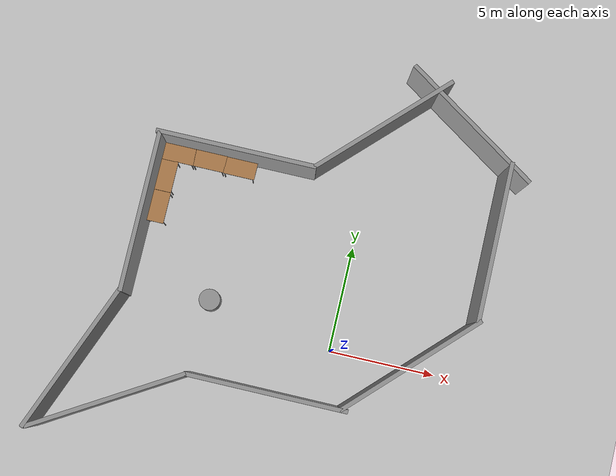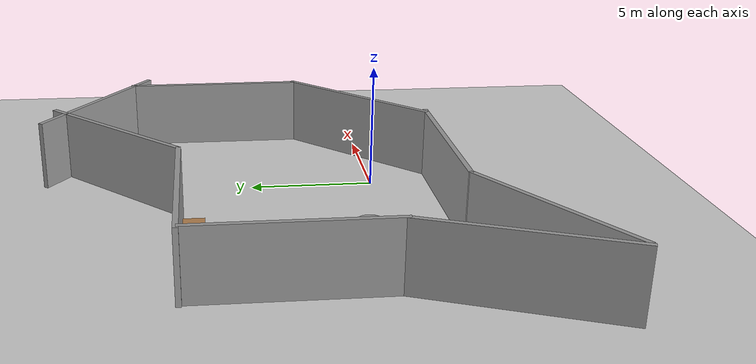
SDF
<sdf version="1.7">
 <world name="default">
  <light name="sun" type="directional">
   <pose>0 0 10 0 -0 0</pose>
   <diffuse>0.8 0.8 0.8 1</diffuse>
   <specular>0.2 0.2 0.2 1</specular>
   <attenuation>
    <range>1000</range>
    <constant>0.9</constant>
    <linear>0.01</linear>
    <quadratic>0.001</quadratic>
   </attenuation>
   <direction>-0.5 0.1 -0.9</direction>
   <spot><inner_angle>0</inner_angle><outer_angle>0</outer_angle><falloff>0</falloff></spot>
  </light>
  <model name="ground_plane">
   <static>1</static>
   <link name="link">
    <collision name="collision">
     <geometry><plane><normal>0 0 1</normal><size>100 100</size></plane></geometry>
     <surface><friction><ode><mu>100</mu><mu2>50</mu2></ode></friction></surface>
    </collision>
    <visual name="visual">
     <cast_shadows>0</cast_shadows>
     <geometry><plane><normal>0 0 1</normal><size>100 100</size></plane></geometry>
     <material>
      <script><uri>file://media/materials/scripts/gazebo.material</uri><name>Gazebo/Grey</name></script>
     </material>
    </visual>
   </link>
  </model>
  <gravity>0 0 -9.8</gravity>
  <magnetic_field>6e-06 2.3e-05 -4.2e-05</magnetic_field>
  <atmosphere type="adiabatic"/>
  <physics type="ode">
   <max_step_size>0.001</max_step_size>
   <real_time_factor>1</real_time_factor>
   <real_time_update_rate>1000</real_time_update_rate>
  </physics>
  <scene><ambient>0.4 0.4 0.4 1</ambient><background>0.7 0.7 0.7 1</background><shadows>1</shadows></scene>
  <audio><device>default</device></audio>
  <spherical_coordinates>
   <surface_model>EARTH_WGS84</surface_model>
   <latitude_deg>0</latitude_deg>
   <longitude_deg>0</longitude_deg>
   <elevation>0</elevation>
   <heading_deg>0</heading_deg>
  </spherical_coordinates>
  <model name="grey_wall_clone">
   <static>1</static>
   <link name="link">
    <pose>0 0 1.4 0 -0 0</pose>
    <collision name="collision"><geometry><box><size>7.5 0.2 2.8</size></box></geometry></collision>
    <visual name="visual">
     <cast_shadows>0</cast_shadows>
     <geometry><box><size>7.5 0.2 2.8</size></box></geometry>
     <material>
      <script>
       <uri>model://grey_wall/materials/scripts</uri>
       <uri>model://grey_wall/materials/textures</uri>
       <name>vrc/grey_wall</name>
      </script>
     </material>
    </visual>
   </link>
   <pose>-2.43797 -2.49316 0 0 -0 0</pose>
  </model>
  <model name="grey_wall_clone_0">
   <static>1</static>
   <link name="link">
    <pose>0 0 1.4 0 -0 0</pose>
    <collision name="collision"><geometry><box><size>7.5 0.2 2.8</size></box></geometry></collision>
    <visual name="visual">
     <cast_shadows>0</cast_shadows>
     <geometry><box><size>7.5 0.2 2.8</size></box></geometry>
     <material>
      <script>
       <uri>model://grey_wall/materials/scripts</uri>
       <uri>model://grey_wall/materials/textures</uri>
       <name>vrc/grey_wall</name>
      </script>
     </material>
    </visual>
   </link>
   <pose>-6.26234 7.91637 0 0 -0 0</pose>
  </model>
  <model name="grey_wall_clone_1">
   <static>1</static>
   <link name="link">
    <pose>0 0 1.4 0 -0 0</pose>
    <collision name="collision"><geometry><box><size>7.5 0.2 2.8</size></box></geometry></collision>
    <visual name="visual">
     <cast_shadows>0</cast_shadows>
     <geometry><box><size>7.5 0.2 2.8</size></box></geometry>
     <material>
      <script>
       <uri>model://grey_wall/materials/scripts</uri>
       <uri>model://grey_wall/materials/textures</uri>
       <name>vrc/grey_wall</name>
      </script>
     </material>
    </visual>
   </link>
   <pose>3.59461 0.136206 0 0 -0 0.785398</pose>
  </model>
  <model name="grey_wall_clone_2">
   <static>1</static>
   <link name="link">
    <pose>0 0 1.4 0 -0 0</pose>
    <collision name="collision"><geometry><box><size>7.5 0.2 2.8</size></box></geometry></collision>
    <visual name="visual">
     <cast_shadows>0</cast_shadows>
     <geometry><box><size>7.5 0.2 2.8</size></box></geometry>
     <material>
      <script>
       <uri>model://grey_wall/materials/scripts</uri>
       <uri>model://grey_wall/materials/textures</uri>
       <name>vrc/grey_wall</name>
      </script>
     </material>
    </visual>
   </link>
   <pose>6.1017 6.4068 0 0 0 -1.5708</pose>
  </model>
  <model name="grey_wall_clone_clone">
   <static>1</static>
   <link name="link">
    <pose>0 0 1.4 0 -0 0</pose>
    <collision name="collision"><geometry><box><size>7.5 0.2 2.8</size></box></geometry></collision>
    <visual name="visual">
     <cast_shadows>0</cast_shadows>
     <geometry><box><size>7.5 0.2 2.8</size></box></geometry>
     <material>
      <script>
       <uri>model://grey_wall/materials/scripts</uri>
       <uri>model://grey_wall/materials/textures</uri>
       <name>vrc/grey_wall</name>
      </script>
     </material>
    </visual>
   </link>
   <pose>3.94104 11.4701 0 0 0 -0.5865</pose>
  </model>
  <model name="grey_wall_clone_1_clone">
   <static>1</static>
   <link name="link">
    <pose>0 0 1.4 0 -0 0</pose>
    <collision name="collision"><geometry><box><size>7.5 0.2 2.8</size></box></geometry></collision>
    <visual name="visual">
     <cast_shadows>0</cast_shadows>
     <geometry><box><size>7.5 0.2 2.8</size></box></geometry>
     <material>
      <script>
       <uri>model://grey_wall/materials/scripts</uri>
       <uri>model://grey_wall/materials/textures</uri>
       <name>vrc/grey_wall</name>
      </script>
     </material>
    </visual>
   </link>
   <pose>0.046173 10.5537 0 0 -0 0.785398</pose>
  </model>
  <model name="grey_wall_clone_1_clone_0">
   <static>1</static>
   <link name="link">
    <pose>0 0 1.4 0 -0 0</pose>
    <collision name="collision"><geometry><box><size>7.5 0.2 2.8</size></box></geometry></collision>
    <visual name="visual">
     <cast_shadows>0</cast_shadows>
     <geometry><box><size>7.5 0.2 2.8</size></box></geometry>
     <material>
      <script>
       <uri>model://grey_wall/materials/scripts</uri>
       <uri>model://grey_wall/materials/textures</uri>
       <name>vrc/grey_wall</name>
      </script>
     </material>
    </visual>
   </link>
   <pose>-9.82935 4.15935 0 0 -0 1.5708</pose>
  </model>
  <model name="grey_wall_clone_1_clone_clone">
   <static>1</static>
   <link name="link">
    <pose>0 0 1.4 0 -0 0</pose>
    <collision name="collision"><geometry><box><size>7.5 0.2 2.8</size></box></geometry></collision>
    <visual name="visual">
     <cast_shadows>0</cast_shadows>
     <geometry><box><size>7.5 0.2 2.8</size></box></geometry>
     <material>
      <script>
       <uri>model://grey_wall/materials/scripts</uri>
       <uri>model://grey_wall/materials/textures</uri>
       <name>vrc/grey_wall</name>
      </script>
     </material>
    </visual>
   </link>
   <pose>-11.2259 -2.9295 0 0 -0 1.19166</pose>
  </model>
  <model name="grey_wall_clone_1_clone_clone_0">
   <static>1</static>
   <link name="link">
    <pose>0 0 1.4 0 -0 0</pose>
    <collision name="collision"><geometry><box><size>7.5 0.2 2.8</size></box></geometry></collision>
    <visual name="visual">
     <cast_shadows>0</cast_shadows>
     <geometry><box><size>7.5 0.2 2.8</size></box></geometry>
     <material>
      <script>
       <uri>model://grey_wall/materials/scripts</uri>
       <uri>model://grey_wall/materials/textures</uri>
       <name>vrc/grey_wall</name>
      </script>
     </material>
    </visual>
   </link>
   <pose>-9.29367 -4.41799 0 0 -0 0.542141</pose>
  </model>
  <model name="table">
   <static>1</static>
   <link name="link">
    <collision name="surface">
     <pose>0 0 1 0 -0 0</pose>
     <geometry><box><size>1.5 0.8 0.03</size></box></geometry>
     <surface><friction><ode><mu>0.6</mu><mu2>0.6</mu2></ode></friction></surface>
    </collision>
    <visual name="visual1">
     <pose>0 0 1 0 -0 0</pose>
     <geometry><box><size>1.5 0.8 0.03</size></box></geometry>
     <material>
      <script><uri>file://media/materials/scripts/gazebo.material</uri><name>Gazebo/Wood</name></script>
     </material>
    </visual>
    <collision name="front_left_leg">
     <pose>0.68 0.38 0.5 0 -0 0</pose>
     <geometry><cylinder><radius>0.02</radius><length>1</length></cylinder></geometry>
    </collision>
    <visual name="front_left_leg">
     <pose>0.68 0.38 0.5 0 -0 0</pose>
     <geometry><cylinder><radius>0.02</radius><length>1</length></cylinder></geometry>
     <material>
      <script><uri>file://media/materials/scripts/gazebo.material</uri><name>Gazebo/Grey</name></script>
     </material>
    </visual>
    <collision name="front_right_leg">
     <pose>0.68 -0.38 0.5 0 -0 0</pose>
     <geometry><cylinder><radius>0.02</radius><length>1</length></cylinder></geometry>
    </collision>
    <visual name="front_right_leg">
     <pose>0.68 -0.38 0.5 0 -0 0</pose>
     <geometry><cylinder><radius>0.02</radius><length>1</length></cylinder></geometry>
     <material>
      <script><uri>file://media/materials/scripts/gazebo.material</uri><name>Gazebo/Grey</name></script>
     </material>
    </visual>
    <collision name="back_right_leg">
     <pose>-0.68 -0.38 0.5 0 -0 0</pose>
     <geometry><cylinder><radius>0.02</radius><length>1</length></cylinder></geometry>
    </collision>
    <visual name="back_right_leg">
     <pose>-0.68 -0.38 0.5 0 -0 0</pose>
     <geometry><cylinder><radius>0.02</radius><length>1</length></cylinder></geometry>
     <material>
      <script><uri>file://media/materials/scripts/gazebo.material</uri><name>Gazebo/Grey</name></script>
     </material>
    </visual>
    <collision name="back_left_leg">
     <pose>-0.68 0.38 0.5 0 -0 0</pose>
     <geometry><cylinder><radius>0.02</radius><length>1</length></cylinder></geometry>
    </collision>
    <visual name="back_left_leg">
     <pose>-0.68 0.38 0.5 0 -0 0</pose>
     <geometry><cylinder><radius>0.02</radius><length>1</length></cylinder></geometry>
     <material>
      <script><uri>file://media/materials/scripts/gazebo.material</uri><name>Gazebo/Grey</name></script>
     </material>
    </visual>
   </link>
   <pose>-8.97399 7.39383 0 0 -0 0</pose>
  </model>
  <model name="table_clone">
   <static>1</static>
   <link name="link">
    <collision name="surface">
     <pose>0 0 1 0 -0 0</pose>
     <geometry><box><size>1.5 0.8 0.03</size></box></geometry>
     <surface><friction><ode><mu>0.6</mu><mu2>0.6</mu2></ode></friction></surface>
    </collision>
    <visual name="visual1">
     <pose>0 0 1 0 -0 0</pose>
     <geometry><box><size>1.5 0.8 0.03</size></box></geometry>
     <material>
      <script><uri>file://media/materials/scripts/gazebo.material</uri><name>Gazebo/Wood</name></script>
     </material>
    </visual>
    <collision name="front_left_leg">
     <pose>0.68 0.38 0.5 0 -0 0</pose>
     <geometry><cylinder><radius>0.02</radius><length>1</length></cylinder></geometry>
    </collision>
    <visual name="front_left_leg">
     <pose>0.68 0.38 0.5 0 -0 0</pose>
     <geometry><cylinder><radius>0.02</radius><length>1</length></cylinder></geometry>
     <material>
      <script><uri>file://media/materials/scripts/gazebo.material</uri><name>Gazebo/Grey</name></script>
     </material>
    </visual>
    <collision name="front_right_leg">
     <pose>0.68 -0.38 0.5 0 -0 0</pose>
     <geometry><cylinder><radius>0.02</radius><length>1</length></cylinder></geometry>
    </collision>
    <visual name="front_right_leg">
     <pose>0.68 -0.38 0.5 0 -0 0</pose>
     <geometry><cylinder><radius>0.02</radius><length>1</length></cylinder></geometry>
     <material>
      <script><uri>file://media/materials/scripts/gazebo.material</uri><name>Gazebo/Grey</name></script>
     </material>
    </visual>
    <collision name="back_right_leg">
     <pose>-0.68 -0.38 0.5 0 -0 0</pose>
     <geometry><cylinder><radius>0.02</radius><length>1</length></cylinder></geometry>
    </collision>
    <visual name="back_right_leg">
     <pose>-0.68 -0.38 0.5 0 -0 0</pose>
     <geometry><cylinder><radius>0.02</radius><length>1</length></cylinder></geometry>
     <material>
      <script><uri>file://media/materials/scripts/gazebo.material</uri><name>Gazebo/Grey</name></script>
     </material>
    </visual>
    <collision name="back_left_leg">
     <pose>-0.68 0.38 0.5 0 -0 0</pose>
     <geometry><cylinder><radius>0.02</radius><length>1</length></cylinder></geometry>
    </collision>
    <visual name="back_left_leg">
     <pose>-0.68 0.38 0.5 0 -0 0</pose>
     <geometry><cylinder><radius>0.02</radius><length>1</length></cylinder></geometry>
     <material>
      <script><uri>file://media/materials/scripts/gazebo.material</uri><name>Gazebo/Grey</name></script>
     </material>
    </visual>
   </link>
   <pose>-7.50065 7.39524 0 0 -0 0</pose>
  </model>
  <model name="table_clone_0">
   <static>1</static>
   <link name="link">
    <collision name="surface">
     <pose>0 0 1 0 -0 0</pose>
     <geometry><box><size>1.5 0.8 0.03</size></box></geometry>
     <surface><friction><ode><mu>0.6</mu><mu2>0.6</mu2></ode></friction></surface>
    </collision>
    <visual name="visual1">
     <pose>0 0 1 0 -0 0</pose>
     <geometry><box><size>1.5 0.8 0.03</size></box></geometry>
     <material>
      <script><uri>file://media/materials/scripts/gazebo.material</uri><name>Gazebo/Wood</name></script>
     </material>
    </visual>
    <collision name="front_left_leg">
     <pose>0.68 0.38 0.5 0 -0 0</pose>
     <geometry><cylinder><radius>0.02</radius><length>1</length></cylinder></geometry>
    </collision>
    <visual name="front_left_leg">
     <pose>0.68 0.38 0.5 0 -0 0</pose>
     <geometry><cylinder><radius>0.02</radius><length>1</length></cylinder></geometry>
     <material>
      <script><uri>file://media/materials/scripts/gazebo.material</uri><name>Gazebo/Grey</name></script>
     </material>
    </visual>
    <collision name="front_right_leg">
     <pose>0.68 -0.38 0.5 0 -0 0</pose>
     <geometry><cylinder><radius>0.02</radius><length>1</length></cylinder></geometry>
    </collision>
    <visual name="front_right_leg">
     <pose>0.68 -0.38 0.5 0 -0 0</pose>
     <geometry><cylinder><radius>0.02</radius><length>1</length></cylinder></geometry>
     <material>
      <script><uri>file://media/materials/scripts/gazebo.material</uri><name>Gazebo/Grey</name></script>
     </material>
    </visual>
    <collision name="back_right_leg">
     <pose>-0.68 -0.38 0.5 0 -0 0</pose>
     <geometry><cylinder><radius>0.02</radius><length>1</length></cylinder></geometry>
    </collision>
    <visual name="back_right_leg">
     <pose>-0.68 -0.38 0.5 0 -0 0</pose>
     <geometry><cylinder><radius>0.02</radius><length>1</length></cylinder></geometry>
     <material>
      <script><uri>file://media/materials/scripts/gazebo.material</uri><name>Gazebo/Grey</name></script>
     </material>
    </visual>
    <collision name="back_left_leg">
     <pose>-0.68 0.38 0.5 0 -0 0</pose>
     <geometry><cylinder><radius>0.02</radius><length>1</length></cylinder></geometry>
    </collision>
    <visual name="back_left_leg">
     <pose>-0.68 0.38 0.5 0 -0 0</pose>
     <geometry><cylinder><radius>0.02</radius><length>1</length></cylinder></geometry>
     <material>
      <script><uri>file://media/materials/scripts/gazebo.material</uri><name>Gazebo/Grey</name></script>
     </material>
    </visual>
   </link>
   <pose>-6.01744 7.38158 0 0 -0 0</pose>
  </model>
  <model name="table_clone_1">
   <static>1</static>
   <link name="link">
    <collision name="surface">
     <pose>0 0 1 0 -0 0</pose>
     <geometry><box><size>1.5 0.8 0.03</size></box></geometry>
     <surface><friction><ode><mu>0.6</mu><mu2>0.6</mu2></ode></friction></surface>
    </collision>
    <visual name="visual1">
     <pose>0 0 1 0 -0 0</pose>
     <geometry><box><size>1.5 0.8 0.03</size></box></geometry>
     <material>
      <script><uri>file://media/materials/scripts/gazebo.material</uri><name>Gazebo/Wood</name></script>
     </material>
    </visual>
    <collision name="front_left_leg">
     <pose>0.68 0.38 0.5 0 -0 0</pose>
     <geometry><cylinder><radius>0.02</radius><length>1</length></cylinder></geometry>
    </collision>
    <visual name="front_left_leg">
     <pose>0.68 0.38 0.5 0 -0 0</pose>
     <geometry><cylinder><radius>0.02</radius><length>1</length></cylinder></geometry>
     <material>
      <script><uri>file://media/materials/scripts/gazebo.material</uri><name>Gazebo/Grey</name></script>
     </material>
    </visual>
    <collision name="front_right_leg">
     <pose>0.68 -0.38 0.5 0 -0 0</pose>
     <geometry><cylinder><radius>0.02</radius><length>1</length></cylinder></geometry>
    </collision>
    <visual name="front_right_leg">
     <pose>0.68 -0.38 0.5 0 -0 0</pose>
     <geometry><cylinder><radius>0.02</radius><length>1</length></cylinder></geometry>
     <material>
      <script><uri>file://media/materials/scripts/gazebo.material</uri><name>Gazebo/Grey</name></script>
     </material>
    </visual>
    <collision name="back_right_leg">
     <pose>-0.68 -0.38 0.5 0 -0 0</pose>
     <geometry><cylinder><radius>0.02</radius><length>1</length></cylinder></geometry>
    </collision>
    <visual name="back_right_leg">
     <pose>-0.68 -0.38 0.5 0 -0 0</pose>
     <geometry><cylinder><radius>0.02</radius><length>1</length></cylinder></geometry>
     <material>
      <script><uri>file://media/materials/scripts/gazebo.material</uri><name>Gazebo/Grey</name></script>
     </material>
    </visual>
    <collision name="back_left_leg">
     <pose>-0.68 0.38 0.5 0 -0 0</pose>
     <geometry><cylinder><radius>0.02</radius><length>1</length></cylinder></geometry>
    </collision>
    <visual name="back_left_leg">
     <pose>-0.68 0.38 0.5 0 -0 0</pose>
     <geometry><cylinder><radius>0.02</radius><length>1</length></cylinder></geometry>
     <material>
      <script><uri>file://media/materials/scripts/gazebo.material</uri><name>Gazebo/Grey</name></script>
     </material>
    </visual>
   </link>
   <pose>-9.32651 6.26122 0 0 0 -1.5708</pose>
  </model>
  <model name="table_clone_1_clone">
   <static>1</static>
   <link name="link">
    <collision name="surface">
     <pose>0 0 1 0 -0 0</pose>
     <geometry><box><size>1.5 0.8 0.03</size></box></geometry>
     <surface><friction><ode><mu>0.6</mu><mu2>0.6</mu2></ode></friction></surface>
    </collision>
    <visual name="visual1">
     <pose>0 0 1 0 -0 0</pose>
     <geometry><box><size>1.5 0.8 0.03</size></box></geometry>
     <material>
      <script><uri>file://media/materials/scripts/gazebo.material</uri><name>Gazebo/Wood</name></script>
     </material>
    </visual>
    <collision name="front_left_leg">
     <pose>0.68 0.38 0.5 0 -0 0</pose>
     <geometry><cylinder><radius>0.02</radius><length>1</length></cylinder></geometry>
    </collision>
    <visual name="front_left_leg">
     <pose>0.68 0.38 0.5 0 -0 0</pose>
     <geometry><cylinder><radius>0.02</radius><length>1</length></cylinder></geometry>
     <material>
      <script><uri>file://media/materials/scripts/gazebo.material</uri><name>Gazebo/Grey</name></script>
     </material>
    </visual>
    <collision name="front_right_leg">
     <pose>0.68 -0.38 0.5 0 -0 0</pose>
     <geometry><cylinder><radius>0.02</radius><length>1</length></cylinder></geometry>
    </collision>
    <visual name="front_right_leg">
     <pose>0.68 -0.38 0.5 0 -0 0</pose>
     <geometry><cylinder><radius>0.02</radius><length>1</length></cylinder></geometry>
     <material>
      <script><uri>file://media/materials/scripts/gazebo.material</uri><name>Gazebo/Grey</name></script>
     </material>
    </visual>
    <collision name="back_right_leg">
     <pose>-0.68 -0.38 0.5 0 -0 0</pose>
     <geometry><cylinder><radius>0.02</radius><length>1</length></cylinder></geometry>
    </collision>
    <visual name="back_right_leg">
     <pose>-0.68 -0.38 0.5 0 -0 0</pose>
     <geometry><cylinder><radius>0.02</radius><length>1</length></cylinder></geometry>
     <material>
      <script><uri>file://media/materials/scripts/gazebo.material</uri><name>Gazebo/Grey</name></script>
     </material>
    </visual>
    <collision name="back_left_leg">
     <pose>-0.68 0.38 0.5 0 -0 0</pose>
     <geometry><cylinder><radius>0.02</radius><length>1</length></cylinder></geometry>
    </collision>
    <visual name="back_left_leg">
     <pose>-0.68 0.38 0.5 0 -0 0</pose>
     <geometry><cylinder><radius>0.02</radius><length>1</length></cylinder></geometry>
     <material>
      <script><uri>file://media/materials/scripts/gazebo.material</uri><name>Gazebo/Grey</name></script>
     </material>
    </visual>
   </link>
   <pose>-9.32817 4.75852 0 0 0 -1.5708</pose>
  </model>
  <model name="unit_cylinder">
   <pose>-5.984 1.04291 0.499993 -3e-06 -4e-06 -0</pose>
   <link name="link">
    <inertial>
     <mass>1</mass>
     <inertia><ixx>0.145833</ixx><ixy>0</ixy><ixz>0</ixz><iyy>0.145833</iyy><iyz>0</iyz><izz>0.125</izz></inertia>
    </inertial>
    <collision name="collision">
     <geometry><cylinder><radius>0.5</radius><length>1</length></cylinder></geometry>
    </collision>
    <visual name="visual">
     <geometry><cylinder><radius>0.5</radius><length>1</length></cylinder></geometry>
     <material>
      <script><name>Gazebo/Grey</name><uri>file://media/materials/scripts/gazebo.material</uri></script>
     </material>
    </visual>
   </link>
  </model>
 </world>
</sdf>
